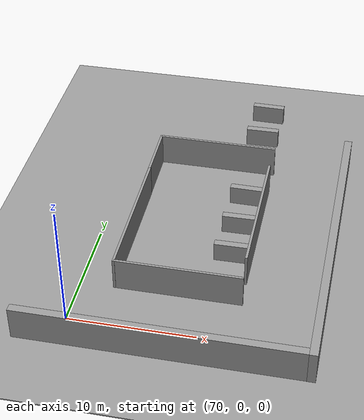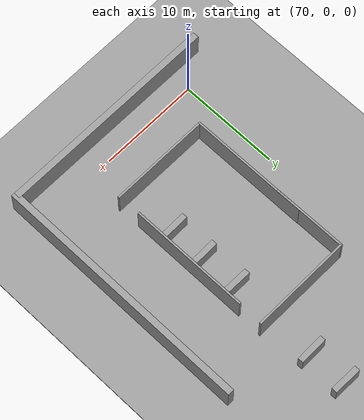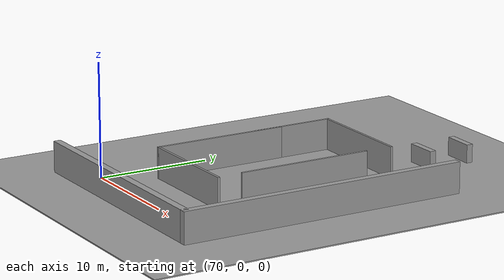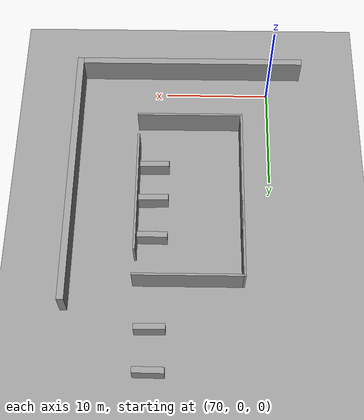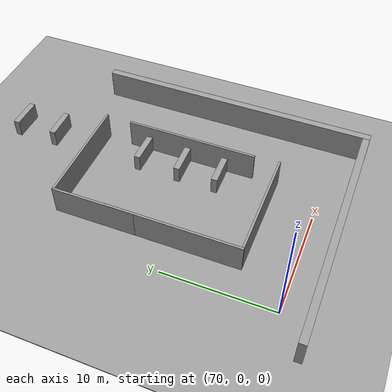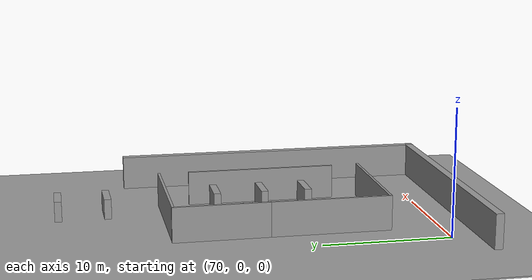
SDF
<sdf version="1.7">
 <world name="default">
  <model name="ground_plane">
   <static>1</static>
   <link name="link">
    <collision name="collision">
     <geometry><plane><normal>0 0 1</normal><size>100 100</size></plane></geometry>
     <surface><friction><ode><mu>100</mu><mu2>50</mu2></ode></friction></surface>
    </collision>
    <visual name="visual">
     <cast_shadows>0</cast_shadows>
     <geometry><plane><normal>0 0 1</normal><size>100 100</size></plane></geometry>
     <material>
      <script><uri>file://media/materials/scripts/gazebo.material</uri><name>Gazebo/Grey</name></script>
     </material>
    </visual>
   </link>
  </model>
  <model name="ground_plane_1">
   <static>1</static>
   <link name="link">
    <collision name="collision">
     <geometry><plane><normal>0 0 1</normal><size>100 100</size></plane></geometry>
     <surface><friction><ode><mu>100</mu><mu2>50</mu2></ode></friction></surface>
    </collision>
    <visual name="visual">
     <cast_shadows>0</cast_shadows>
     <geometry><plane><normal>0 0 1</normal><size>100 100</size></plane></geometry>
     <material>
      <script><uri>file://media/materials/scripts/gazebo.material</uri><name>Gazebo/Grey</name></script>
     </material>
    </visual>
   </link>
   <pose>89.798 0.232818 0 0 -0 0</pose>
  </model>
  <model name="jiaoshi_clone_clone_clone_0_clone_1">
   <model name="grey_wall">
    <static>1</static>
    <link name="link">
     <pose>0 0 1.4 0 -0 0</pose>
     <collision name="collision"><geometry><box><size>7.5 0.2 2.8</size></box></geometry></collision>
     <visual name="visual">
      <cast_shadows>0</cast_shadows>
      <geometry><box><size>7.5 0.2 2.8</size></box></geometry>
      <material>
       <script>
        <uri>model://grey_wall/materials/scripts</uri>
        <uri>model://grey_wall/materials/textures</uri>
        <name>vrc/grey_wall</name>
       </script>
      </material>
     </visual>
    </link>
    <pose>-3.38172 4.2623 0 0 0 -1.56473</pose>
   </model>
   <model name="grey_wall_10m">
    <link name="link">
     <pose>1.25079 -0.023082 1.4 0 -0 0</pose>
     <inertial>
      <inertia><ixx>0</ixx><ixy>0</ixy><ixz>0</ixz><iyy>0</iyy><iyz>0</iyz><izz>0</izz></inertia>
      <mass>0</mass>
     </inertial>
     <visual name="visual">
      <cast_shadows>0</cast_shadows>
      <geometry><box><size>10.0157 0.2 2.8</size></box></geometry>
      <material>
       <script>
        <uri>model://grey_wall/materials/scripts</uri>
        <uri>model://grey_wall/materials/textures</uri>
        <name>vrc/grey_wall</name>
       </script>
       <shader type="pixel"/>
       <ambient>1 1 1 1</ambient>
       <diffuse>1 1 1 1</diffuse>
       <specular>0 0 0 1</specular>
       <emissive>0 0 0 1</emissive>
      </material>
     </visual>
     <collision name="collision">
      <geometry><box><size>10.0157 0.2 2.8</size></box></geometry>
      <surface>
       <friction>
        <ode><mu>1</mu><mu2>1</mu2><fdir1>0 0 0</fdir1><slip1>0</slip1><slip2>0</slip2></ode>
        <torsional>
         <coefficient>1</coefficient>
         <patch_radius>0</patch_radius>
         <surface_radius>0</surface_radius>
         <use_patch_radius>1</use_patch_radius>
         <ode><slip>0</slip></ode>
        </torsional>
       </friction>
       <bounce><restitution_coefficient>0</restitution_coefficient><threshold>1e+06</threshold></bounce>
       <contact>
        <collide_without_contact>0</collide_without_contact>
        <collide_without_contact_bitmask>1</collide_without_contact_bitmask>
        <collide_bitmask>1</collide_bitmask>
        <ode>
         <soft_cfm>0</soft_cfm>
         <soft_erp>0.2</soft_erp>
         <kp>1e+13</kp>
         <kd>1</kd>
         <max_vel>0.01</max_vel>
         <min_depth>0</min_depth>
        </ode>
        <bullet>
         <split_impulse>1</split_impulse>
         <split_impulse_penetration_threshold>-0.01</split_impulse_penetration_threshold>
         <soft_cfm>0</soft_cfm>
         <soft_erp>0.2</soft_erp>
         <kp>1e+13</kp>
         <kd>1</kd>
        </bullet>
       </contact>
      </surface>
     </collision>
    </link>
    <static>1</static>
    <pose>0.433183 -8.77625 0 0 -0 0</pose>
   </model>
   <model name="grey_wall_10m_0">
    <link name="link">
     <pose>1.25079 -0.023082 1.4 0 -0 0</pose>
     <inertial>
      <inertia><ixx>0</ixx><ixy>0</ixy><ixz>0</ixz><iyy>0</iyy><iyz>0</iyz><izz>0</izz></inertia>
      <mass>0</mass>
     </inertial>
     <visual name="visual">
      <cast_shadows>0</cast_shadows>
      <geometry><box><size>10.0157 0.2 2.8</size></box></geometry>
      <material>
       <script>
        <uri>model://grey_wall/materials/scripts</uri>
        <uri>model://grey_wall/materials/textures</uri>
        <name>vrc/grey_wall</name>
       </script>
       <shader type="pixel"/>
       <ambient>1 1 1 1</ambient>
       <diffuse>1 1 1 1</diffuse>
       <specular>0 0 0 1</specular>
       <emissive>0 0 0 1</emissive>
      </material>
     </visual>
     <collision name="collision">
      <geometry><box><size>10.0157 0.2 2.8</size></box></geometry>
      <surface>
       <friction>
        <ode><mu>1</mu><mu2>1</mu2><fdir1>0 0 0</fdir1><slip1>0</slip1><slip2>0</slip2></ode>
        <torsional>
         <coefficient>1</coefficient>
         <patch_radius>0</patch_radius>
         <surface_radius>0</surface_radius>
         <use_patch_radius>1</use_patch_radius>
         <ode><slip>0</slip></ode>
        </torsional>
       </friction>
       <bounce><restitution_coefficient>0</restitution_coefficient><threshold>1e+06</threshold></bounce>
       <contact>
        <collide_without_contact>0</collide_without_contact>
        <collide_without_contact_bitmask>1</collide_without_contact_bitmask>
        <collide_bitmask>1</collide_bitmask>
        <ode>
         <soft_cfm>0</soft_cfm>
         <soft_erp>0.2</soft_erp>
         <kp>1e+13</kp>
         <kd>1</kd>
         <max_vel>0.01</max_vel>
         <min_depth>0</min_depth>
        </ode>
        <bullet>
         <split_impulse>1</split_impulse>
         <split_impulse_penetration_threshold>-0.01</split_impulse_penetration_threshold>
         <soft_cfm>0</soft_cfm>
         <soft_erp>0.2</soft_erp>
         <kp>1e+13</kp>
         <kd>1</kd>
        </bullet>
       </contact>
      </surface>
     </collision>
    </link>
    <static>1</static>
    <pose>0.377364 7.92573 0 0 -0 0</pose>
   </model>
   <model name="grey_wall_12m_vertial">
    <link name="link">
     <pose>0.289112 -0.003891 1.4 0 0 -1.5701</pose>
     <inertial>
      <inertia><ixx>0</ixx><ixy>0</ixy><ixz>0</ixz><iyy>0</iyy><iyz>0</iyz><izz>0</izz></inertia>
      <mass>0</mass>
     </inertial>
     <visual name="visual">
      <cast_shadows>0</cast_shadows>
      <geometry><box><size>12.0527 0.2 2.8</size></box></geometry>
      <material>
       <script>
        <uri>model://grey_wall/materials/scripts</uri>
        <uri>model://grey_wall/materials/textures</uri>
        <name>vrc/grey_wall</name>
       </script>
       <shader type="pixel"/>
       <ambient>1 1 1 1</ambient>
       <diffuse>1 1 1 1</diffuse>
       <specular>0 0 0 1</specular>
       <emissive>0 0 0 1</emissive>
      </material>
     </visual>
     <collision name="collision">
      <geometry><box><size>12.0527 0.2 2.8</size></box></geometry>
      <surface>
       <friction>
        <ode><mu>1</mu><mu2>1</mu2><fdir1>0 0 0</fdir1><slip1>0</slip1><slip2>0</slip2></ode>
        <torsional>
         <coefficient>1</coefficient>
         <patch_radius>0</patch_radius>
         <surface_radius>0</surface_radius>
         <use_patch_radius>1</use_patch_radius>
         <ode><slip>0</slip></ode>
        </torsional>
       </friction>
       <bounce><restitution_coefficient>0</restitution_coefficient><threshold>1e+06</threshold></bounce>
       <contact>
        <collide_without_contact>0</collide_without_contact>
        <collide_without_contact_bitmask>1</collide_without_contact_bitmask>
        <collide_bitmask>1</collide_bitmask>
        <ode>
         <soft_cfm>0</soft_cfm>
         <soft_erp>0.2</soft_erp>
         <kp>1e+13</kp>
         <kd>1</kd>
         <max_vel>0.01</max_vel>
         <min_depth>0</min_depth>
        </ode>
        <bullet>
         <split_impulse>1</split_impulse>
         <split_impulse_penetration_threshold>-0.01</split_impulse_penetration_threshold>
         <soft_cfm>0</soft_cfm>
         <soft_erp>0.2</soft_erp>
         <kp>1e+13</kp>
         <kd>1</kd>
        </bullet>
       </contact>
      </surface>
     </collision>
    </link>
    <static>1</static>
    <pose>-3.63668 -2.87268 0 0 -0 0</pose>
   </model>
   <model name="grey_wall_12m_vertial_0">
    <link name="link">
     <pose>0.289112 -0.003891 1.4 0 0 -1.5701</pose>
     <inertial>
      <inertia><ixx>0</ixx><ixy>0</ixy><ixz>0</ixz><iyy>0</iyy><iyz>0</iyz><izz>0</izz></inertia>
      <mass>0</mass>
     </inertial>
     <visual name="visual">
      <cast_shadows>0</cast_shadows>
      <geometry><box><size>12.0527 0.2 2.8</size></box></geometry>
      <material>
       <script>
        <uri>model://grey_wall/materials/scripts</uri>
        <uri>model://grey_wall/materials/textures</uri>
        <name>vrc/grey_wall</name>
       </script>
       <shader type="pixel"/>
       <ambient>1 1 1 1</ambient>
       <diffuse>1 1 1 1</diffuse>
       <specular>0 0 0 1</specular>
       <emissive>0 0 0 1</emissive>
      </material>
     </visual>
     <collision name="collision">
      <geometry><box><size>12.0527 0.2 2.8</size></box></geometry>
      <surface>
       <friction>
        <ode><mu>1</mu><mu2>1</mu2><fdir1>0 0 0</fdir1><slip1>0</slip1><slip2>0</slip2></ode>
        <torsional>
         <coefficient>1</coefficient>
         <patch_radius>0</patch_radius>
         <surface_radius>0</surface_radius>
         <use_patch_radius>1</use_patch_radius>
         <ode><slip>0</slip></ode>
        </torsional>
       </friction>
       <bounce><restitution_coefficient>0</restitution_coefficient><threshold>1e+06</threshold></bounce>
       <contact>
        <collide_without_contact>0</collide_without_contact>
        <collide_without_contact_bitmask>1</collide_without_contact_bitmask>
        <collide_bitmask>1</collide_bitmask>
        <ode>
         <soft_cfm>0</soft_cfm>
         <soft_erp>0.2</soft_erp>
         <kp>1e+13</kp>
         <kd>1</kd>
         <max_vel>0.01</max_vel>
         <min_depth>0</min_depth>
        </ode>
        <bullet>
         <split_impulse>1</split_impulse>
         <split_impulse_penetration_threshold>-0.01</split_impulse_penetration_threshold>
         <soft_cfm>0</soft_cfm>
         <soft_erp>0.2</soft_erp>
         <kp>1e+13</kp>
         <kd>1</kd>
        </bullet>
       </contact>
      </surface>
     </collision>
    </link>
    <static>1</static>
    <pose>6.20786 -0.539083 0 0 -0 0</pose>
   </model>
   <static>0</static>
   <pose>76.0857 12.842 0 0 -0 0</pose>
  </model>
  <model name="grew_wall_long_vertial_1_clone_clone_1_clone">
   <model name="grey_wall_long">
    <link name="link">
     <pose>0 0 1.37589 0 -0 0</pose>
     <inertial>
      <inertia><ixx>0</ixx><ixy>0</ixy><ixz>0</ixz><iyy>0</iyy><iyz>0</iyz><izz>0</izz></inertia>
      <mass>0</mass>
     </inertial>
     <visual name="visual">
      <cast_shadows>0</cast_shadows>
      <geometry><box><size>25.8815 0.642976 2.8</size></box></geometry>
      <material>
       <script>
        <uri>model://grey_wall/materials/scripts</uri>
        <uri>model://grey_wall/materials/textures</uri>
        <name>vrc/grey_wall</name>
       </script>
       <shader type="pixel"><normal_map>__default__</normal_map></shader>
       <ambient>1 1 1 1</ambient>
       <diffuse>1 1 1 1</diffuse>
       <specular>0 0 0 1</specular>
       <emissive>0 0 0 1</emissive>
      </material>
     </visual>
     <collision name="collision">
      <geometry><box><size>25.8815 0.642976 2.8</size></box></geometry>
      <surface>
       <friction>
        <ode><mu>1</mu><mu2>1</mu2><fdir1>0 0 0</fdir1><slip1>0</slip1><slip2>0</slip2></ode>
        <torsional>
         <coefficient>1</coefficient>
         <patch_radius>0</patch_radius>
         <surface_radius>0</surface_radius>
         <use_patch_radius>1</use_patch_radius>
         <ode><slip>0</slip></ode>
        </torsional>
       </friction>
       <bounce><restitution_coefficient>0</restitution_coefficient><threshold>1e+06</threshold></bounce>
       <contact>
        <collide_without_contact>0</collide_without_contact>
        <collide_without_contact_bitmask>1</collide_without_contact_bitmask>
        <collide_bitmask>1</collide_bitmask>
        <ode>
         <soft_cfm>0</soft_cfm>
         <soft_erp>0.2</soft_erp>
         <kp>1e+13</kp>
         <kd>1</kd>
         <max_vel>0.01</max_vel>
         <min_depth>0</min_depth>
        </ode>
        <bullet>
         <split_impulse>1</split_impulse>
         <split_impulse_penetration_threshold>-0.01</split_impulse_penetration_threshold>
         <soft_cfm>0</soft_cfm>
         <soft_erp>0.2</soft_erp>
         <kp>1e+13</kp>
         <kd>1</kd>
        </bullet>
       </contact>
      </surface>
     </collision>
    </link>
    <static>1</static>
    <pose>1e-06 -0 0 0 -0 1.57003</pose>
   </model>
   <static>0</static>
   <pose>88.7842 10.2506 0 0 -0 0</pose>
  </model>
  <model name="grey_wall_long_term_clone_0_clone_0">
   <link name="link">
    <pose>-1.74587 -0.378849 1.37589 0 -0 0</pose>
    <inertial>
     <inertia><ixx>0</ixx><ixy>0</ixy><ixz>0</ixz><iyy>0</iyy><iyz>0</iyz><izz>0</izz></inertia>
     <mass>0</mass>
    </inertial>
    <visual name="visual">
     <cast_shadows>0</cast_shadows>
     <geometry><box><size>22.1596 0.642976 2.8</size></box></geometry>
     <material>
      <script>
       <uri>model://grey_wall/materials/scripts</uri>
       <uri>model://grey_wall/materials/textures</uri>
       <name>vrc/grey_wall</name>
      </script>
      <shader type="pixel"><normal_map>__default__</normal_map></shader>
      <ambient>1 1 1 1</ambient>
      <diffuse>1 1 1 1</diffuse>
      <specular>0 0 0 1</specular>
      <emissive>0 0 0 1</emissive>
     </material>
    </visual>
    <collision name="collision">
     <geometry><box><size>22.1596 0.642976 2.8</size></box></geometry>
     <surface>
      <friction>
       <ode><mu>1</mu><mu2>1</mu2><fdir1>0 0 0</fdir1><slip1>0</slip1><slip2>0</slip2></ode>
       <torsional>
        <coefficient>1</coefficient>
        <patch_radius>0</patch_radius>
        <surface_radius>0</surface_radius>
        <use_patch_radius>1</use_patch_radius>
        <ode><slip>0</slip></ode>
       </torsional>
      </friction>
      <bounce><restitution_coefficient>0</restitution_coefficient><threshold>1e+06</threshold></bounce>
      <contact>
       <collide_without_contact>0</collide_without_contact>
       <collide_without_contact_bitmask>1</collide_without_contact_bitmask>
       <collide_bitmask>1</collide_bitmask>
       <ode>
        <soft_cfm>0</soft_cfm>
        <soft_erp>0.2</soft_erp>
        <kp>1e+13</kp>
        <kd>1</kd>
        <max_vel>0.01</max_vel>
        <min_depth>0</min_depth>
       </ode>
       <bullet>
        <split_impulse>1</split_impulse>
        <split_impulse_penetration_threshold>-0.01</split_impulse_penetration_threshold>
        <soft_cfm>0</soft_cfm>
        <soft_erp>0.2</soft_erp>
        <kp>1e+13</kp>
        <kd>1</kd>
       </bullet>
      </contact>
     </surface>
    </collision>
   </link>
   <static>1</static>
   <pose>79.4268 -1.97771 0 0 -0 0</pose>
  </model>
  <model name="unit_box_clone_43">
   <pose>81.009 28.9751 0.834396 -0 3.2e-05 -0.01398</pose>
   <link name="link">
    <inertial>
     <mass>1</mass>
     <inertia>
      <ixx>0.166667</ixx>
      <ixy>0</ixy>
      <ixz>0</ixz>
      <iyy>0.166667</iyy>
      <iyz>0</iyz>
      <izz>0.166667</izz>
     </inertia>
    </inertial>
    <collision name="collision"><geometry><box><size>2.81196 0.562598 1.66888</size></box></geometry></collision>
    <visual name="visual">
     <geometry><box><size>2.81196 0.562598 1.66888</size></box></geometry>
     <material>
      <script><name>Gazebo/Grey</name><uri>file://media/materials/scripts/gazebo.material</uri></script>
     </material>
    </visual>
   </link>
  </model>
  <model name="unit_box_clone_45">
   <pose>81.0248 25.1354 0.834396 -0 -3.2e-05 0.012934</pose>
   <link name="link">
    <inertial>
     <mass>1</mass>
     <inertia>
      <ixx>0.166667</ixx>
      <ixy>0</ixy>
      <ixz>0</ixz>
      <iyy>0.166667</iyy>
      <iyz>0</iyz>
      <izz>0.166667</izz>
     </inertia>
    </inertial>
    <collision name="collision"><geometry><box><size>2.81196 0.562598 1.66888</size></box></geometry></collision>
    <visual name="visual">
     <geometry><box><size>2.81196 0.562598 1.66888</size></box></geometry>
     <material>
      <script><name>Gazebo/Grey</name><uri>file://media/materials/scripts/gazebo.material</uri></script>
     </material>
    </visual>
   </link>
  </model>
  <model name="unit_box_clone_47">
   <pose>81.047 16.3628 0.834396 0 -3.2e-05 -0.013142</pose>
   <link name="link">
    <inertial>
     <mass>1</mass>
     <inertia>
      <ixx>0.166667</ixx>
      <ixy>0</ixy>
      <ixz>0</ixz>
      <iyy>0.166667</iyy>
      <iyz>0</iyz>
      <izz>0.166667</izz>
     </inertia>
    </inertial>
    <collision name="collision"><geometry><box><size>2.81196 0.562598 1.66888</size></box></geometry></collision>
    <visual name="visual">
     <geometry><box><size>2.81196 0.562598 1.66888</size></box></geometry>
     <material>
      <script><name>Gazebo/Grey</name><uri>file://media/materials/scripts/gazebo.material</uri></script>
     </material>
    </visual>
   </link>
  </model>
  <model name="unit_box_clone_49">
   <pose>81.0488 12.53 0.834396 0 -3.2e-05 0.013887</pose>
   <link name="link">
    <inertial>
     <mass>1</mass>
     <inertia>
      <ixx>0.166667</ixx>
      <ixy>0</ixy>
      <ixz>0</ixz>
      <iyy>0.166667</iyy>
      <iyz>0</iyz>
      <izz>0.166667</izz>
     </inertia>
    </inertial>
    <collision name="collision"><geometry><box><size>2.81196 0.562598 1.66888</size></box></geometry></collision>
    <visual name="visual">
     <geometry><box><size>2.81196 0.562598 1.66888</size></box></geometry>
     <material>
      <script><name>Gazebo/Grey</name><uri>file://media/materials/scripts/gazebo.material</uri></script>
     </material>
    </visual>
   </link>
  </model>
  <model name="unit_box_clone_51">
   <pose>81.036 8.95708 0.834396 0 3.2e-05 0.01392</pose>
   <link name="link">
    <inertial>
     <mass>1</mass>
     <inertia>
      <ixx>0.166667</ixx>
      <ixy>0</ixy>
      <ixz>0</ixz>
      <iyy>0.166667</iyy>
      <iyz>0</iyz>
      <izz>0.166667</izz>
     </inertia>
    </inertial>
    <collision name="collision"><geometry><box><size>2.81196 0.562598 1.66888</size></box></geometry></collision>
    <visual name="visual">
     <geometry><box><size>2.81196 0.562598 1.66888</size></box></geometry>
     <material>
      <script><name>Gazebo/Grey</name><uri>file://media/materials/scripts/gazebo.material</uri></script>
     </material>
    </visual>
   </link>
  </model>
 </world>
</sdf>
